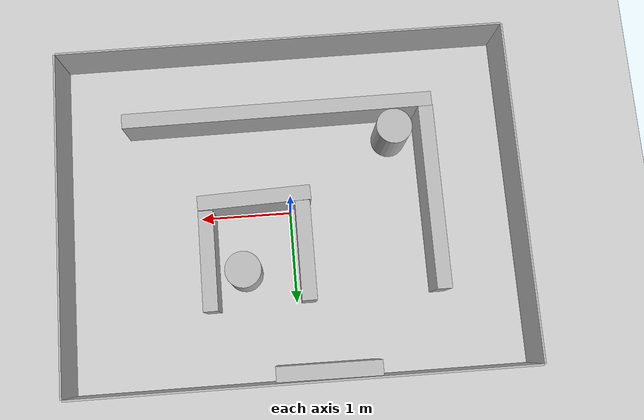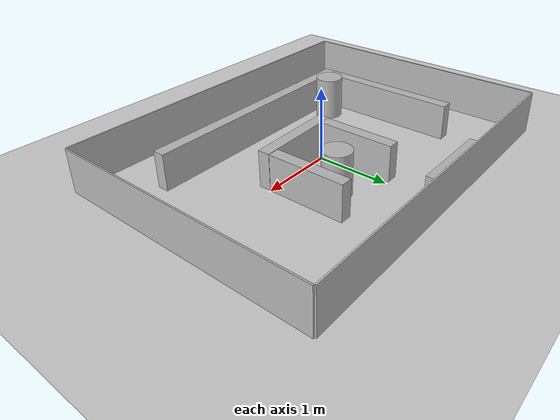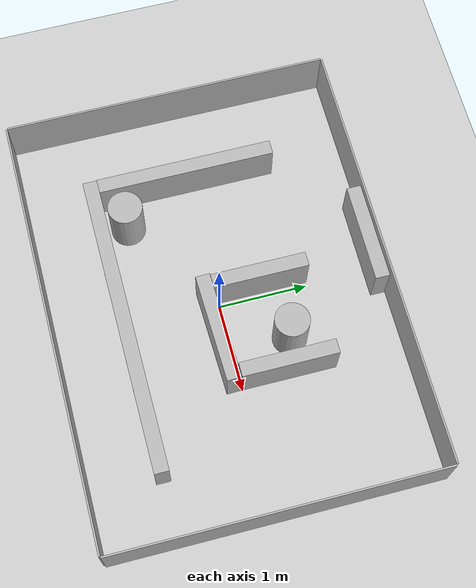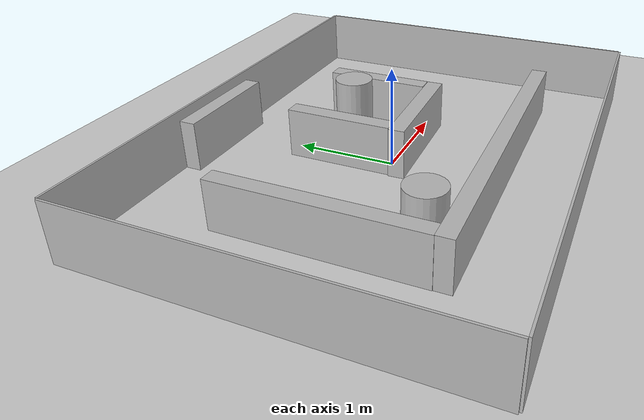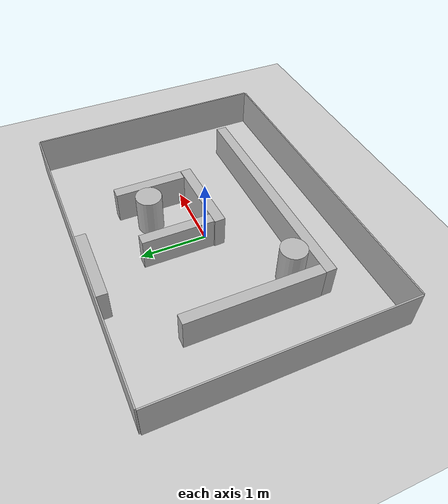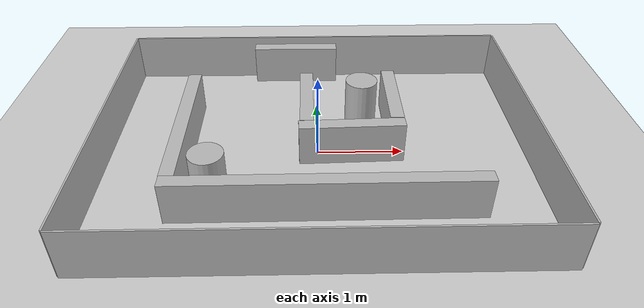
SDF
<sdf version="1.6">
 <world name="default">
  <light name="sun" type="directional">
   <pose>0 0 10 0 -0 0</pose>
   <diffuse>0.8 0.8 0.8 1</diffuse>
   <specular>0.2 0.2 0.2 1</specular>
   <attenuation>
    <range>1000</range>
    <constant>0.9</constant>
    <linear>0.01</linear>
    <quadratic>0.001</quadratic>
   </attenuation>
   <direction>-0.5 0.1 -0.9</direction>
  </light>
  <model name="ground_plane">
   <static>1</static>
   <link name="link">
    <collision name="collision">
     <geometry><plane><normal>0 0 1</normal><size>100 100</size></plane></geometry>
     <surface><friction><ode><mu>100</mu><mu2>50</mu2></ode></friction></surface>
    </collision>
    <visual name="visual">
     <cast_shadows>0</cast_shadows>
     <geometry><plane><normal>0 0 1</normal><size>100 100</size></plane></geometry>
     <material>
      <script><uri>file://media/materials/scripts/gazebo.material</uri><name>Gazebo/Grey</name></script>
     </material>
    </visual>
   </link>
  </model>
  <gravity>0 0 -9.8</gravity>
  <magnetic_field>6e-06 2.3e-05 -4.2e-05</magnetic_field>
  <atmosphere type="adiabatic"/>
  <physics name="default_physics" default="0" type="ode">
   <max_step_size>0.001</max_step_size>
   <real_time_factor>1</real_time_factor>
   <real_time_update_rate>1000</real_time_update_rate>
  </physics>
  <scene><ambient>0.4 0.4 0.4 1</ambient><background>0.7 0.7 0.7 1</background><shadows>1</shadows></scene>
  <spherical_coordinates>
   <surface_model>EARTH_WGS84</surface_model>
   <latitude_deg>0</latitude_deg>
   <longitude_deg>0</longitude_deg>
   <elevation>0</elevation>
   <heading_deg>0</heading_deg>
  </spherical_coordinates>
  <model name="border_Top">
   <pose>1e-06 1.84001 0.3 -1.4e-05 -0 -4e-06</pose>
   <static>1</static>
   <link name="link">
    <collision name="collision">
     <geometry><box><size>4.88 0.02 0.6</size></box></geometry>
     <surface><friction><ode><mu>0.01</mu><mu2>0.01</mu2></ode></friction></surface>
    </collision>
    <visual name="visual"><geometry><box><size>4.88 0.02 0.6</size></box></geometry></visual>
    <inertial>
     <inertia><ixx>1</ixx><ixy>0</ixy><ixz>0</ixz><iyy>1</iyy><iyz>0</iyz><izz>1</izz></inertia>
     <mass>1</mass>
    </inertial>
   </link>
  </model>
  <model name="border_Bot">
   <static>1</static>
   <pose>-9e-06 -1.84002 0.3 1e-05 -0 2e-06</pose>
   <link name="link">
    <collision name="collision">
     <geometry><box><size>4.88 0.02 0.6</size></box></geometry>
     <surface><friction><ode><mu>0.01</mu><mu2>0.01</mu2></ode></friction></surface>
    </collision>
    <visual name="visual"><geometry><box><size>4.88 0.02 0.6</size></box></geometry></visual>
    <inertial>
     <inertia><ixx>1</ixx><ixy>0</ixy><ixz>0</ixz><iyy>1</iyy><iyz>0</iyz><izz>1</izz></inertia>
     <mass>1</mass>
    </inertial>
   </link>
  </model>
  <model name="border_Left">
   <static>1</static>
   <pose>-2.45001 5e-06 0.3 0 7e-06 0</pose>
   <link name="link">
    <collision name="collision">
     <geometry><box><size>0.02 3.66 0.6</size></box></geometry>
     <surface><friction><ode><mu>0.01</mu><mu2>0.01</mu2></ode></friction></surface>
    </collision>
    <visual name="visual"><geometry><box><size>0.02 3.66 0.6</size></box></geometry></visual>
    <inertial>
     <inertia><ixx>1</ixx><ixy>0</ixy><ixz>0</ixz><iyy>1</iyy><iyz>0</iyz><izz>1</izz></inertia>
     <mass>1</mass>
    </inertial>
   </link>
  </model>
  <model name="border_Right">
   <static>1</static>
   <pose>2.45 -2e-06 0.3 0 -8e-06 -1e-06</pose>
   <link name="link">
    <collision name="collision">
     <geometry><box><size>0.02 3.66 0.6</size></box></geometry>
     <surface><friction><ode><mu>0.01</mu><mu2>0.01</mu2></ode></friction></surface>
    </collision>
    <visual name="visual"><geometry><box><size>0.02 3.66 0.6</size></box></geometry></visual>
    <inertial>
     <inertia><ixx>1</ixx><ixy>0</ixy><ixz>0</ixz><iyy>1</iyy><iyz>0</iyz><izz>1</izz></inertia>
     <mass>1</mass>
    </inertial>
   </link>
  </model>
  <model name="box_1">
   <static>1</static>
   <pose>-1.54261 -3e-06 0.250008 0 3e-06 3e-06</pose>
   <link name="link">
    <collision name="collision">
     <geometry><box><size>0.16 1.9931 0.5</size></box></geometry>
     <surface><friction><ode><mu>0.01</mu><mu2>0.01</mu2></ode></friction></surface>
    </collision>
    <visual name="visual"><geometry><box><size>0.16 1.9931 0.5</size></box></geometry></visual>
    <inertial>
     <inertia><ixx>1</ixx><ixy>0</ixy><ixz>0</ixz><iyy>1</iyy><iyz>0</iyz><izz>1</izz></inertia>
     <mass>1</mass>
    </inertial>
   </link>
  </model>
  <model name="cylinder_1_clone">
   <pose>0.542605 0.652449 0.3 0 -0 0</pose>
   <static>1</static>
   <link name="link">
    <collision name="collision">
     <geometry><cylinder><radius>0.192057</radius><length>0.6</length></cylinder></geometry>
    </collision>
    <visual name="visual">
     <geometry><cylinder><radius>0.192057</radius><length>0.6</length></cylinder></geometry>
    </visual>
   </link>
  </model>
  <model name="box_1_clone">
   <static>1</static>
   <pose>-0.272552 1.74672 0.250001 -3e-06 -0 -1.57648</pose>
   <link name="link">
    <collision name="collision">
     <geometry><box><size>0.16 1.10724 0.5</size></box></geometry>
     <surface><friction><ode><mu>0.01</mu><mu2>0.01</mu2></ode></friction></surface>
    </collision>
    <visual name="visual"><geometry><box><size>0.16 1.10724 0.5</size></box></geometry></visual>
    <inertial>
     <inertia><ixx>1</ixx><ixy>0</ixy><ixz>0</ixz><iyy>1</iyy><iyz>0</iyz><izz>1</izz></inertia>
     <mass>1</mass>
    </inertial>
   </link>
  </model>
  <audio><device>default</device></audio>
  <model name="box_1_clone_0">
   <link name="link">
    <inertial>
     <inertia>
      <ixx>1.64964</ixx>
      <ixy>0</ixy>
      <ixz>0</ixz>
      <iyy>0.0389465</iyy>
      <iyz>0</iyz>
      <izz>1.61793</izz>
     </inertia>
     <mass>1.69578</mass>
    </inertial>
    <pose>0.726966 -1.09289 -1e-06 0 -0 -1.56593</pose>
    <visual name="visual"><geometry><box><size>0.16 3.37987 0.5</size></box></geometry></visual>
    <collision name="collision">
     <geometry><box><size>0.16 3.37987 0.5</size></box></geometry>
     <surface>
      <friction>
       <ode><mu>0.01</mu><mu2>0.01</mu2><fdir1>0 0 0</fdir1><slip1>0</slip1><slip2>0</slip2></ode>
       <torsional>
        <coefficient>1</coefficient>
        <patch_radius>0</patch_radius>
        <surface_radius>0</surface_radius>
        <use_patch_radius>1</use_patch_radius>
        <ode><slip>0</slip></ode>
       </torsional>
      </friction>
      <bounce><restitution_coefficient>0</restitution_coefficient><threshold>1e+06</threshold></bounce>
      <contact>
       <collide_without_contact>0</collide_without_contact>
       <collide_without_contact_bitmask>1</collide_without_contact_bitmask>
       <collide_bitmask>1</collide_bitmask>
       <ode>
        <soft_cfm>0</soft_cfm>
        <soft_erp>0.2</soft_erp>
        <kp>1e+13</kp>
        <kd>1</kd>
        <max_vel>0.01</max_vel>
        <min_depth>0</min_depth>
       </ode>
       <bullet>
        <split_impulse>1</split_impulse>
        <split_impulse_penetration_threshold>-0.01</split_impulse_penetration_threshold>
        <soft_cfm>0</soft_cfm>
        <soft_erp>0.2</soft_erp>
        <kp>1e+13</kp>
        <kd>1</kd>
       </bullet>
      </contact>
     </surface>
    </collision>
   </link>
   <static>1</static>
   <pose>-0.654682 0.027208 0.250008 0 3e-06 3e-06</pose>
  </model>
  <model name="box_1_clone_2">
   <static>1</static>
   <pose>0.909176 0.523048 0.250008 0 3e-06 3e-06</pose>
   <link name="link">
    <collision name="collision">
     <geometry><box><size>0.16 1.06425 0.5</size></box></geometry>
     <surface><friction><ode><mu>0.01</mu><mu2>0.01</mu2></ode></friction></surface>
    </collision>
    <visual name="visual"><geometry><box><size>0.16 1.06425 0.5</size></box></geometry></visual>
    <inertial>
     <inertia><ixx>1</ixx><ixy>0</ixy><ixz>0</ixz><iyy>1</iyy><iyz>0</iyz><izz>1</izz></inertia>
     <mass>1</mass>
    </inertial>
   </link>
  </model>
  <model name="box_1_clone_3">
   <static>1</static>
   <pose>0.384478 -0.113355 0.250008 -3e-06 -0 -1.53853</pose>
   <link name="link">
    <collision name="collision">
     <geometry><box><size>0.16 1.21289 0.5</size></box></geometry>
     <surface><friction><ode><mu>0.01</mu><mu2>0.01</mu2></ode></friction></surface>
    </collision>
    <visual name="visual"><geometry><box><size>0.16 1.21289 0.5</size></box></geometry></visual>
    <inertial>
     <inertia><ixx>1</ixx><ixy>0</ixy><ixz>0</ixz><iyy>1</iyy><iyz>0</iyz><izz>1</izz></inertia>
     <mass>1</mass>
    </inertial>
   </link>
  </model>
  <model name="box_1_clone_1">
   <link name="link">
    <inertial>
     <inertia>
      <ixx>0.0611823</ixx>
      <ixy>0</ixy>
      <ixz>0</ixz>
      <iyy>0.0122376</iyy>
      <iyz>0</iyz>
      <izz>0.0512181</izz>
     </inertia>
     <mass>0.532843</mass>
    </inertial>
    <visual name="visual"><geometry><box><size>0.16 1.06201 0.5</size></box></geometry></visual>
    <collision name="collision">
     <geometry><box><size>0.16 1.06201 0.5</size></box></geometry>
     <surface>
      <friction>
       <ode><mu>0.01</mu><mu2>0.01</mu2><fdir1>0 0 0</fdir1><slip1>0</slip1><slip2>0</slip2></ode>
       <torsional>
        <coefficient>1</coefficient>
        <patch_radius>0</patch_radius>
        <surface_radius>0</surface_radius>
        <use_patch_radius>1</use_patch_radius>
        <ode><slip>0</slip></ode>
       </torsional>
      </friction>
      <bounce><restitution_coefficient>0</restitution_coefficient><threshold>1e+06</threshold></bounce>
      <contact>
       <collide_without_contact>0</collide_without_contact>
       <collide_without_contact_bitmask>1</collide_without_contact_bitmask>
       <collide_bitmask>1</collide_bitmask>
       <ode>
        <soft_cfm>0</soft_cfm>
        <soft_erp>0.2</soft_erp>
        <kp>1e+13</kp>
        <kd>1</kd>
        <max_vel>0.01</max_vel>
        <min_depth>0</min_depth>
       </ode>
       <bullet>
        <split_impulse>1</split_impulse>
        <split_impulse_penetration_threshold>-0.01</split_impulse_penetration_threshold>
        <soft_cfm>0</soft_cfm>
        <soft_erp>0.2</soft_erp>
        <kp>1e+13</kp>
        <kd>1</kd>
       </bullet>
      </contact>
     </surface>
    </collision>
   </link>
   <static>1</static>
   <pose>-0.127764 0.481835 0.250008 0 3e-06 3e-06</pose>
  </model>
  <model name="cylinder_1_clone_clone">
   <pose>-1.16902 -0.76511 0.3 0 -0 0</pose>
   <static>1</static>
   <link name="link">
    <collision name="collision">
     <geometry><cylinder><radius>0.192057</radius><length>0.6</length></cylinder></geometry>
    </collision>
    <visual name="visual">
     <geometry><cylinder><radius>0.192057</radius><length>0.6</length></cylinder></geometry>
    </visual>
   </link>
  </model>
 </world>
</sdf>
